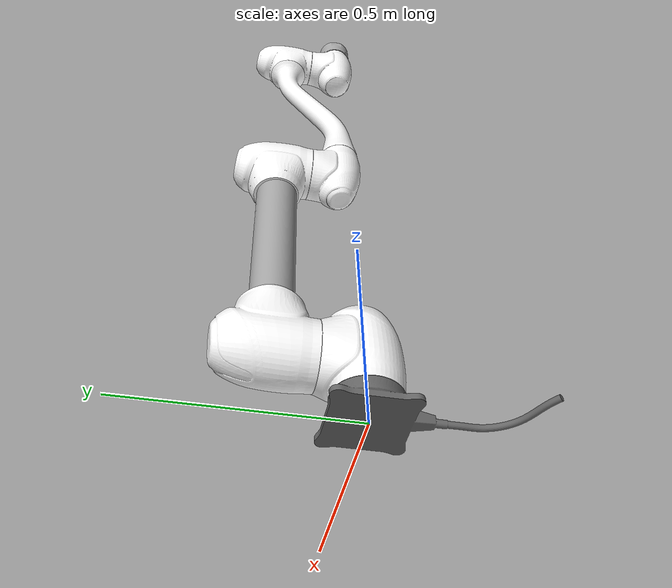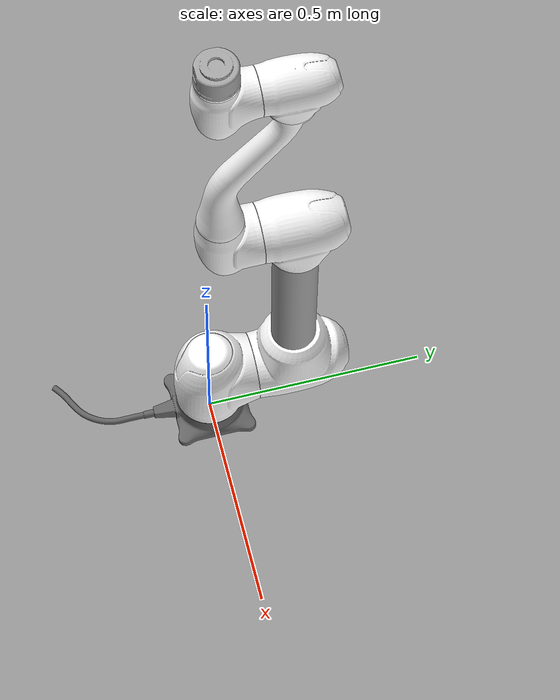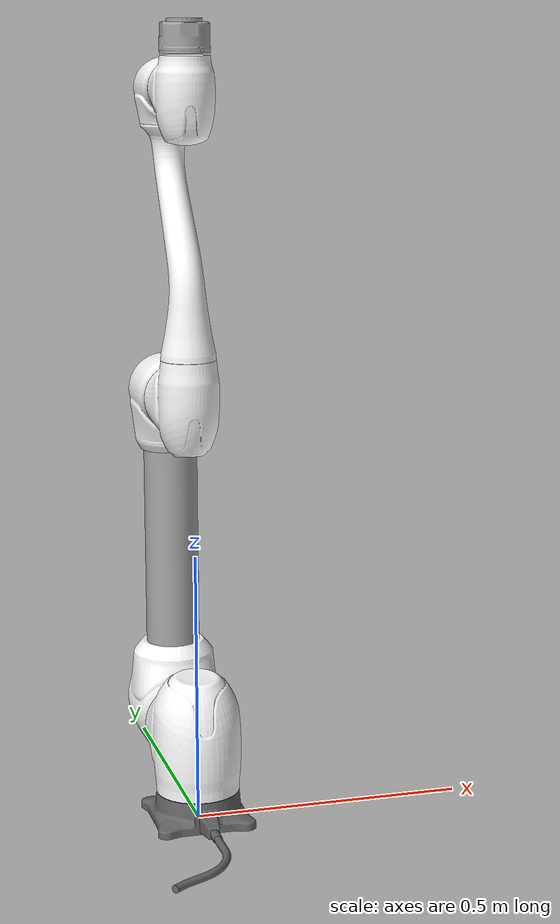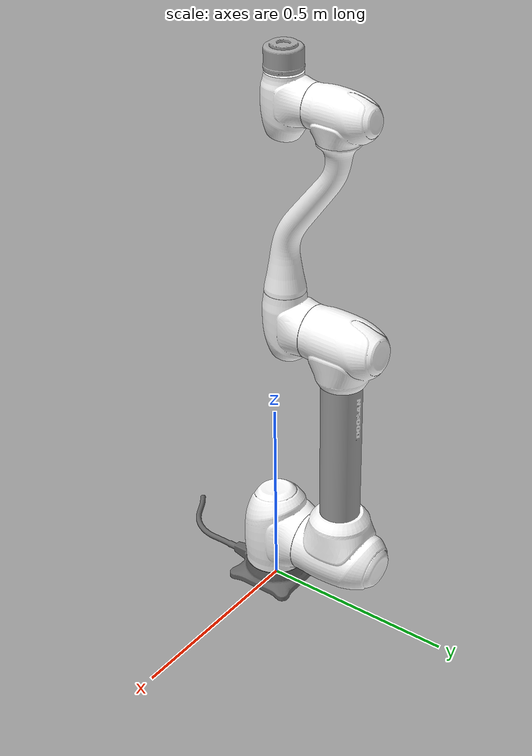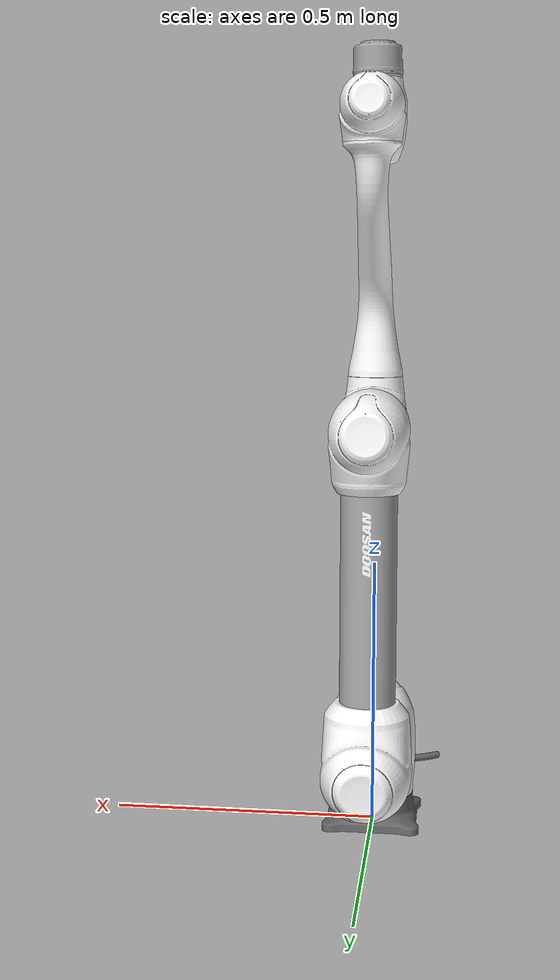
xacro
<?xml version="1.0"?>
<robot xmlns:xacro="http://www.ros.org/wiki/xacro" name="m1013" >

   <xacro:arg name="color"   default="white"/>
   <xacro:arg name="gripper" default="none"/>
   <xacro:arg name="namespace" default=""/>

   <xacro:property name="cr" value="$(arg color)"/>
   <xacro:property name="gr" value="$(arg gripper)"/>

   <xacro:if value="${cr == 'white'}">
     <xacro:include filename="$(find my_doosan_pkg)/description/xacro/macro.m1013.white.xacro" />
   </xacro:if>

   <xacro:if value="${cr == 'blue'}">
     <xacro:include filename="$(find my_doosan_pkg)/description/xacro/macro.m1013.blue.xacro" />
   </xacro:if>

   <xacro:if value="${gr == 'robotiq_2f'}">
      <xacro:include filename="$(find my_doosan_pkg)/description/xacro/robotiq_2f.urdf.xacro" />
   </xacro:if>

   <xacro:m1013 namespace="$(arg namespace)"/>

   <!-- World fixed joint-->
   <link name="world" />
   <joint name="world_fixed" type="fixed">
      <origin xyz="0 0 0" rpy="0 0 0"/>
      <parent link="world"/>
      <child link="base_0"/>
   </joint>

</robot>

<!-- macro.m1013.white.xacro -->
<robot name="m1013" xmlns:xacro="http://www.ros.org/wiki/xacro">

	<!-- I did some modifications concerning the original file-->
	<!-- The  damping and friction where added in each joint-->

	<xacro:include filename="$(find my_doosan_pkg)/description/xacro/macro.gazebo_config_control.xacro" />
	<xacro:include filename="$(find my_doosan_pkg)/description/xacro/macro.transmission.xacro" />
	<xacro:include filename="$(find my_doosan_pkg)/description/xacro/macro.internal_config.xacro" />

	<xacro:macro name="m1013" params="namespace">

		<!-- Base -->
		<link name="base_0">
			<inertial>
				<mass value="4.12"/>
				<origin xyz="-3.4e-05   -0.004815    0.048482"/>
				<inertia ixx="0.016331" ixy="-6.4837e-06" ixz="2.0048e-06" iyy="0.014945"
					iyz="-0.00051686"
					izz="0.022577"/>
			</inertial>
			<visual>
				<origin rpy="0 0 0" xyz="0 0 0" />
				<geometry>
					<mesh filename="file:///$(find my_doosan_pkg)/description/meshes/m1013_white/MF1013_0_0.dae" scale="0.001 0.001 0.001" />
				</geometry>
			</visual>
			<collision>
        		<geometry>
          			<mesh filename="file:///$(find my_doosan_pkg)/description/meshes/m1013_white/MF1013_0_0.dae" scale="0.001 0.001 0.001" />
        		</geometry>
      		</collision>
		</link>

		<!-- joint 1 -->
		<joint name="joint1" type="revolute">
			<parent link="base_0" />
			<child link="link1" />
			<origin rpy="0 0 0" xyz="0 0 0.1525" />
			<axis xyz="0 0 1" />
			<limit effort="346" lower="-6.2832" upper="6.2832" velocity="2.0944"/>
			<dynamics damping="60.0" friction="4.0" />
		</joint>

		<!-- Link 1 -->
		<link name="link1">
			<inertial>
				<mass value="7.8"/>
				<origin xyz="0.000119      0.0428   -0.006383"/>
				<inertia ixx="0.04506" ixy="4.1126e-05" ixz="-5.2533e-05" iyy="0.029679"
					iyz="-0.0019959"
					izz="0.047056"/>
			</inertial>
            <collision>
                <geometry>
                    <cylinder radius="0.1" length="0.2"/>
                </geometry>
            </collision>
			<visual>
				<origin rpy="0 0 0" xyz="0 0 0" />
				<geometry>
					<mesh filename="file:///$(find my_doosan_pkg)/description/meshes/m1013_white/MF1013_1_0.dae" scale="0.001 0.001 0.001" />
				</geometry>
			</visual>
		</link>

		<!-- joint2 -->
		<joint name="joint2" type="revolute">
			<parent link="link1" />
			<child link="link2" />
			<origin rpy="0 -1.571 -1.571" xyz="0 0.0345 0" />
			<axis xyz="0 0 1" />
			<limit effort="346" lower="-6.2832" upper="6.2832" velocity="2.0944"/>
			<dynamics damping="50.0" friction="3.0" />
		</joint>

		<!-- Link 2 -->
		<link name="link2">
			<inertial>
				<mass value="10.83"/>
				<origin xyz="0.25973    -5.3e-05     0.15782"/>
				<inertia ixx="0.037586" ixy="-0.00036999" ixz="-0.0069927" iyy="0.84943"
					iyz="4.0201e-05"
					izz="0.85021"/>
			</inertial>
            <collision>
                <origin rpy="0 -1.571 0" xyz="0.3 0 0.1525" />
                <geometry>
                    <cylinder radius="0.08" length="0.75"/>
                </geometry>
            </collision>
			<visual>
				<origin rpy="0 0 0" xyz="0 0 0" />
				<geometry>
					<mesh filename="file:///$(find my_doosan_pkg)/description/meshes/m1013_white/MF1013_2_0.dae" scale="0.001 0.001 0.001" />
				</geometry>
			</visual>
			<visual>
				<origin rpy="0 0 0" xyz="0 0 0" />
				<geometry>
					<mesh filename="file:///$(find my_doosan_pkg)/description/meshes/m1013_white/MF1013_2_1.dae" scale="0.001 0.001 0.001" />
				</geometry>
			</visual>
			<visual>
				<origin rpy="0 0 0" xyz="0 0 0" />
				<geometry>
					<mesh filename="file:///$(find my_doosan_pkg)/description/meshes/m1013_white/MF1013_2_2.dae" scale="0.001 0.001 0.001" />
				</geometry>
			</visual>
		</link>

		<!-- joint3 -->
		<joint name="joint3" type="revolute">
			<parent link="link2" />
			<child link="link3" />
			<origin rpy="0 0 1.571" xyz="0.62 0 0" />
			<axis xyz="0 0 1" />
			<limit effort="163" lower="-2.7925" upper="2.7925" velocity="3.1416"/>
			<dynamics damping="40.0" friction="2.0"/>
		</joint>

		<!-- Link 3 -->
		<link name="link3">
			<inertial>
				<mass value="3.68"/>
				<origin xyz="-1.5e-05   -0.006702    0.044608"/>
				<inertia ixx="0.018748" ixy="7.8071e-06" ixz="-5.0324e-06" iyy="0.018972"
					iyz="-0.00099342"
					izz="0.011502"/>
			</inertial>
      		<visual>
				<origin rpy="0 0 0" xyz="0 0 0" />
				<geometry>
					<mesh filename="file:///$(find my_doosan_pkg)/description/meshes/m1013_white/MF1013_3_0.dae" scale="0.001 0.001 0.001" />
				</geometry>
			</visual>
			<collision>
				<origin rpy="0 0 0" xyz="0 0 0" />
				<geometry>
					<mesh filename="file:///$(find my_doosan_pkg)/description/meshes/m1013_white/MF1013_3_0.dae" scale="0.001 0.001 0.001" />
				</geometry>
			</collision>
		</link>

		<!-- joint4 -->
		<joint name="joint4" type="revolute">
			<parent link="link3" />
			<child link="link4" />
			<origin rpy="1.571 0 0" xyz="0 -0.559 0" />
			<axis xyz="0 0 1" />
			<limit effort="50" lower="-6.2832" upper="6.2832" velocity="3.927"/>
			<dynamics damping="20.0" friction="1.0" />
		</joint>

		<!-- Link 4 -->
		<link name="link4">
			<inertial>
				<mass value="3.82"/>
				<origin xyz="7.1e-05    0.091879    -0.18252"/>
				<inertia ixx="0.19063" ixy="-1.8037e-05" ixz="-3.8576e-05" iyy="0.17268" iyz="-0.052996"
					izz="0.030386"/>
			</inertial>
			<collision>
					<origin rpy="-0.55 0 0" xyz="0 0.07 -0.3" />
					<geometry>
							<cylinder radius="0.07" length="0.4"/>
					</geometry>
			</collision>
			<visual>
				<origin rpy="0 0 0" xyz="0 0 0" />
				<geometry>
					<mesh filename="file:///$(find my_doosan_pkg)/description/meshes/m1013_white/MF1013_4_0.dae" scale="0.001 0.001 0.001" />
				</geometry>
			</visual>
			<visual>
				<origin rpy="0 0 0" xyz="0 0 0" />
				<geometry>
					<mesh filename="file:///$(find my_doosan_pkg)/description/meshes/m1013_white/MF1013_4_1.dae" scale="0.001 0.001 0.001" />
				</geometry>
			</visual>
		</link>

		<!-- joint5 -->
		<joint name="joint5" type="revolute">
			<parent link="link4" />
			<child link="link5" />
			<origin rpy="-1.571 0 0" xyz="0 0 0" />
			<axis xyz="0 0 1" />
			<limit effort="50" lower="-6.2832" upper="6.2832" velocity="3.927"/>
			<dynamics damping="10.0" friction="1.0" />
		</joint>

		<!-- Link 5 -->
		<link name="link5">
			<inertial>
				<mass value="2.82"/>
				<origin xyz="-0.000273    0.003651    0.032088"/>
				<inertia ixx="0.015583" ixy="2.135e-05" ixz="-5.1895e-06" iyy="0.011519"
					iyz="0.00042553"
					izz="0.0088671"/>
			</inertial>
			<collision>
					<origin rpy="1.571 0 0" xyz="0 0 0" />
					<geometry>
							<cylinder radius="0.08" length="0.15"/>
					</geometry>
			</collision>
			<visual>
				<origin rpy="0 0 0" xyz="0 0 0" />
				<geometry>
					<mesh filename="file:///$(find my_doosan_pkg)/description/meshes/m1013_white/MF1013_5_0.dae" scale="0.001 0.001 0.001" />
				</geometry>
			</visual>
		</link>

		<!-- joint6 -->
		<joint name="joint6" type="revolute">
			<parent link="link5" />
			<child link="link6" />
			<origin rpy="1.571 0 0" xyz="0 -0.124 0" />
			<axis xyz="0 0 1" />
			<limit effort="50" lower="-6.2832" upper="6.2832" velocity="3.927"/>
			<dynamics damping="10.0" friction="1.0" />
		</joint>

		<!-- Link 6 -->
		<link name="link6">
			<inertial>
				<mass value="1.16"/>
				<origin xyz="-0.000292       7e-06     -0.0539"/>
				<inertia ixx="0.0048282" ixy="4.1298e-06" ixz="6.9879e-06" iyy="0.0059519"
					iyz="4.252e-06"
					izz="0.0061263"/>
			</inertial>
			<visual>
				<origin rpy="0 0 0" xyz="0 0 0" />
				<geometry>
					<mesh filename="file:///$(find my_doosan_pkg)/description/meshes/m1013_white/MF1013_6_0.dae" scale="0.001 0.001 0.001" />
				</geometry>
			</visual>
			<collision>
        		<geometry>
          			<mesh filename="file:///$(find my_doosan_pkg)/description/meshes/m1013_white/MF1013_6_0.dae" scale="0.001 0.001 0.001" />
        		</geometry>
      		</collision>
		</link>

		<!-- the following lines instantiates all the info described in the file macro.gazebo_config_control.xacro, transmissions and internal_config by david-->
		<xacro:config_ctr_gazebo />
		<xacro:dsr_config_coeff />
		<xacro:dsr_transmission />

	</xacro:macro>
</robot>
